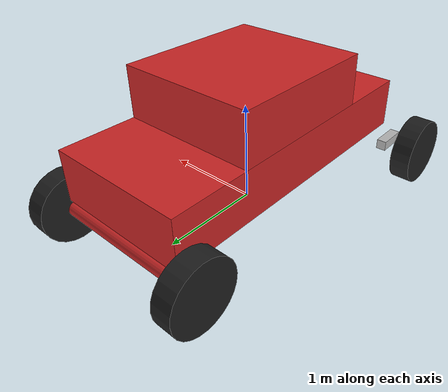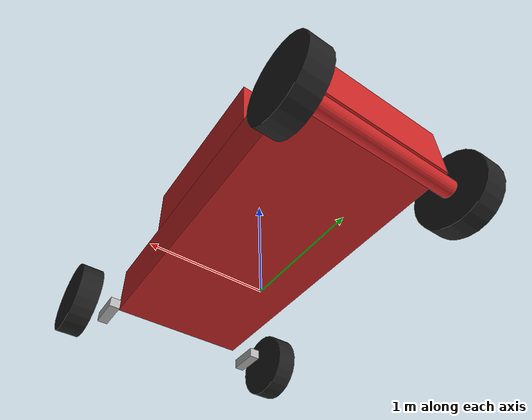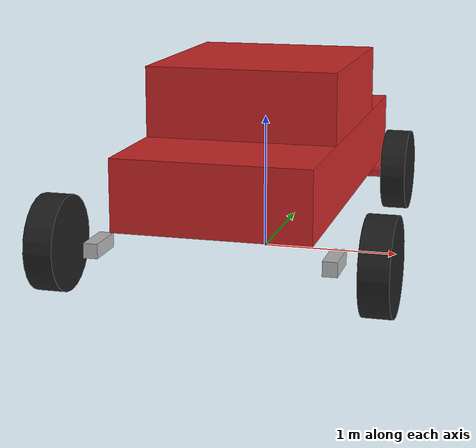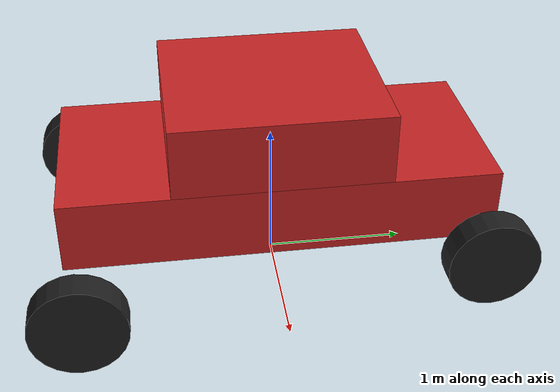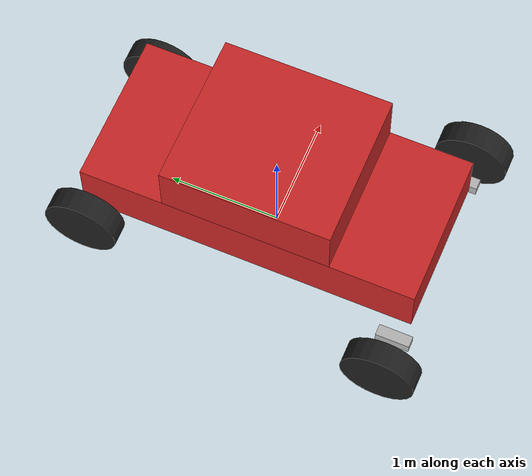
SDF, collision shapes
<?xml version="1.0" ?>
<sdf version='1.7'>
  <model name='steering_robot'>
    <link name='map'>
      <inertial>
        <pose>0 0.05241 0.011928 0 -0 0</pose>
        <mass>830</mass>
        <inertia>
          <ixx>687.053</ixx>
          <ixy>0</ixy>
          <ixz>0</ixz>
          <iyy>149.021</iyy>
          <iyz>-13.8361</iyz>
          <izz>783.643</izz>
        </inertia>
      </inertial>
      <collision name='map_fixed_joint_lump__ferrari_chassis_collision'>
        <pose>0 0 0.7 0 -0 0</pose>
        <geometry>
          <box>
            <size>1.357 3 0.5</size>
          </box>
        </geometry>
        <surface>
          <contact>
            <ode/>
          </contact>
          <friction>
            <ode/>
          </friction>
        </surface>
      </collision>
      <collision name='map_fixed_joint_lump__ferrari_chassis_collision_1'>
        <pose>0 0 1.2 0 -0 0</pose>
        <geometry>
          <box>
            <size>1.357 1.5 0.5</size>
          </box>
        </geometry>
        <surface>
          <contact>
            <ode/>
          </contact>
          <friction>
            <ode/>
          </friction>
        </surface>
      </collision>
      <collision name='map_fixed_joint_lump__rear_axle_collision_3'>
        <pose>0 1.45 0.33 0 1.5708 0</pose>
        <geometry>
          <cylinder>
            <length>1.6</length>
            <radius>0.075</radius>
          </cylinder>
        </geometry>
      </collision>
      <visual name='map_fixed_joint_lump__ferrari_chassis_visual'>
        <pose>0 0 0.7 0 -0 0</pose>
        <geometry>
          <box>
            <size>1.357 3 0.5</size>
          </box>
        </geometry>
        <material>
          <script>
            <name>Gazebo/Red</name>
            <uri>file://media/materials/scripts/gazebo.material</uri>
          </script>
        </material>
      </visual>
      <visual name='map_fixed_joint_lump__ferrari_chassis_visual_1'>
        <pose>0 0 1.2 0 -0 0</pose>
        <geometry>
          <box>
            <size>1.357 1 0.5</size>
          </box>
        </geometry>
        <material>
          <script>
            <name>Gazebo/Red</name>
            <uri>file://media/materials/scripts/gazebo.material</uri>
          </script>
        </material>
      </visual>
      <visual name='map_fixed_joint_lump__ferrari_chassis_visual_2'>
        <pose>0 0 0.7 0 -0 0</pose>
        <geometry>
          <box>
            <size>1.557 2 0.5</size>
          </box>
        </geometry>
        <material>
          <script>
            <name>Gazebo/Red</name>
            <uri>file://media/materials/scripts/gazebo.material</uri>
          </script>
        </material>
      </visual>
      <visual name='map_fixed_joint_lump__ferrari_chassis_visual_3'>
        <pose>0 0 0.7 0 -0 0</pose>
        <geometry>
          <box>
            <size>1.757 1.5 0.5</size>
          </box>
        </geometry>
        <material>
          <script>
            <name>Gazebo/Red</name>
            <uri>file://media/materials/scripts/gazebo.material</uri>
          </script>
        </material>
      </visual>
      <visual name='map_fixed_joint_lump__ferrari_chassis_visual_4'>
        <pose>0.5 1.4 1.05 0 -0 0</pose>
        <geometry>
          <box>
            <size>0.1 0.1 0.3</size>
          </box>
        </geometry>
        <material>
          <script>
            <name>Gazebo/Red</name>
            <uri>file://media/materials/scripts/gazebo.material</uri>
          </script>
        </material>
      </visual>
      <visual name='map_fixed_joint_lump__ferrari_chassis_visual_5'>
        <pose>-0.5 1.4 1.05 0 -0 0</pose>
        <geometry>
          <box>
            <size>0.1 0.1 0.3</size>
          </box>
        </geometry>
        <material>
          <script>
            <name>Gazebo/Red</name>
            <uri>file://media/materials/scripts/gazebo.material</uri>
          </script>
        </material>
      </visual>
      <visual name='map_fixed_joint_lump__ferrari_chassis_visual_6'>
        <pose>0 1.4 1.25 0 -0 0</pose>
        <geometry>
          <box>
            <size>1.357 0.2 0.1</size>
          </box>
        </geometry>
        <material>
          <script>
            <name>Gazebo/Red</name>
            <uri>file://media/materials/scripts/gazebo.material</uri>
          </script>
        </material>
      </visual>
      <visual name='map_fixed_joint_lump__ferrari_chassis_visual_7'>
        <pose>0 -1 1.05 0.6 -0 0</pose>
        <geometry>
          <box>
            <size>1.357 1.357 0.1</size>
          </box>
        </geometry>
        <material>
          <script>
            <name>Gazebo/Red</name>
            <uri>file://media/materials/scripts/gazebo.material</uri>
          </script>
        </material>
      </visual>
      <visual name='map_fixed_joint_lump__ferrari_chassis_visual_8'>
        <pose>0 0.75 1.05 -0.8 0 0</pose>
        <geometry>
          <box>
            <size>1.357 0.8785 0.1</size>
          </box>
        </geometry>
        <material>
          <script>
            <name>Gazebo/Red</name>
            <uri>file://media/materials/scripts/gazebo.material</uri>
          </script>
        </material>
      </visual>

      <visual name='map_fixed_joint_lump__rear_axle_visual_11'>
        <pose>0 1.45 0.33 0 1.5708 0</pose>
        <geometry>
          <cylinder>
            <length>1.6</length>
            <radius>0.075</radius>
          </cylinder>
        </geometry>
      </visual>
      <velocity_decay/>
      <velocity_decay/>

      <gravity>1</gravity>
      <velocity_decay/>
    </link>
    <joint name='front_left_steering_joint' type='fixed'>
      <pose relative_to='map'>0.8 -1.4 0.33 0 -0 0</pose>
      <parent>map</parent>
      <child>front_left_steering</child>
      <axis>
        <xyz>0 0 1</xyz>
        <limit>
          <lower>-0.6</lower>
          <upper>0.6</upper>
          <effort>10000</effort>
          <velocity>1000</velocity>
        </limit>
        <dynamics>
          <spring_reference>0</spring_reference>
          <spring_stiffness>0</spring_stiffness>
        </dynamics>
      </axis>
      <physics>
        <ode>
          <limit>
            <cfm>0</cfm>
            <erp>0.2</erp>
          </limit>
        </ode>
      </physics>
    </joint>
    <link name='front_left_steering'>
      <pose relative_to='front_left_steering_joint'>0 0 0 0 -0 0</pose>
      <inertial>
        <pose>0 0 0 0 -0 0</pose>
        <mass>50</mass>
        <inertia>
          <ixx>0.416667</ixx>
          <ixy>0</ixy>
          <ixz>0</ixz>
          <iyy>0.0833333</iyy>
          <iyz>0</iyz>
          <izz>0.416667</izz>
        </inertia>
      </inertial>
      <collision name='front_left_steering_collision'>
        <pose>0 0 0 0 -0 0</pose>
        <geometry>
          <box>
            <size>0.1 0.3 0.1</size>
          </box>
        </geometry>
      </collision>
      <visual name='front_left_steering_visual'>
        <pose>0 0 0 0 -0 0</pose>
        <geometry>
          <box>
            <size>0.1 0.3 0.1</size>
          </box>
        </geometry>
      </visual>
    </link>
    <joint name='front_right_steering_wheel_joint' type='fixed'>
      <pose relative_to='front_left_steering'>0.3 0 0 0 -0 0</pose>
      <parent>front_left_steering</parent>
      <child>front_right_steering_wheel</child>
      <axis>
        <xyz>1 0 0</xyz>
        <limit>
          <lower>-1e+16</lower>
          <upper>1e+16</upper>
        </limit>
        <dynamics>
          <damping>0.01</damping>
          <friction>0</friction>
          <spring_reference>0</spring_reference>
          <spring_stiffness>0</spring_stiffness>
        </dynamics>
      </axis>
      <physics>
        <ode>
          <limit>
            <cfm>0</cfm>
            <erp>0.2</erp>
          </limit>
        </ode>
      </physics>
    </joint>
    <link name='front_right_steering_wheel'>
      <pose relative_to='front_right_steering_wheel_joint'>0 0 0 0 -0 0</pose>
      <inertial>
        <pose>0 0 0 0 -0 0</pose>
        <mass>30</mass>
        <inertia>
          <ixx>0.91675</ixx>
          <ixy>0</ixy>
          <ixz>0</ixz>
          <iyy>0.91675</iyy>
          <iyz>0</iyz>
          <izz>1.6335</izz>
        </inertia>
      </inertial>
      <collision name='front_right_steering_wheel_collision'>
        <pose>0 0 0 0 1.5708 0</pose>
        <geometry>
          <cylinder>
            <length>0.2</length>
            <radius>0.33</radius>
          </cylinder>
        </geometry>
        <surface>
          <contact>
            <ode/>
          </contact>
          <friction>
            <ode/>
          </friction>
        </surface>
      </collision>
      <visual name='front_right_steering_wheel_visual'>
        <pose>0 0 0 0 -0 0</pose>
        <geometry>
          <mesh>
            <scale>0.01 0.01 0.01</scale>
            <uri>model://autopark/urdf/meshes/wheel.dae</uri>
          </mesh>
        </geometry>
        <material>
          <script>
            <name>Gazebo/Black</name>
            <uri>file://media/materials/scripts/gazebo.material</uri>
          </script>
        </material>
      </visual>
      <gravity>1</gravity>
      <velocity_decay/>
    </link>
    <joint name='front_right_steering_joint' type='fixed'>
      <pose relative_to='map'>-0.8 -1.4 0.33 0 -0 0</pose>
      <parent>map</parent>
      <child>front_right_steering</child>
      <axis>
        <xyz>0 0 1</xyz>
        <limit>
          <lower>-0.6</lower>
          <upper>0.6</upper>
          <effort>10000</effort>
          <velocity>1000</velocity>
        </limit>
        <dynamics>
          <spring_reference>0</spring_reference>
          <spring_stiffness>0</spring_stiffness>
        </dynamics>
      </axis>
      <physics>
        <ode>
          <limit>
            <cfm>0</cfm>
            <erp>0.2</erp>
          </limit>
        </ode>
      </physics>
    </joint>
    <link name='front_right_steering'>
      <pose relative_to='front_right_steering_joint'>0 0 0 0 -0 0</pose>
      <inertial>
        <pose>0 0 0 0 -0 0</pose>
        <mass>50</mass>
        <inertia>
          <ixx>0.416667</ixx>
          <ixy>0</ixy>
          <ixz>0</ixz>
          <iyy>0.0833333</iyy>
          <iyz>0</iyz>
          <izz>0.416667</izz>
        </inertia>
      </inertial>
      <collision name='front_right_steering_collision'>
        <pose>0 0 0 0 -0 0</pose>
        <geometry>
          <box>
            <size>0.1 0.3 0.1</size>
          </box>
        </geometry>
      </collision>
      <visual name='front_right_steering_visual'>
        <pose>0 0 0 0 -0 0</pose>
        <geometry>
          <box>
            <size>0.1 0.3 0.1</size>
          </box>
        </geometry>
      </visual>
    </link>
    <joint name='front_left_steering_wheel_joint' type='fixed'>
      <pose relative_to='front_right_steering'>-0.3 0 0 0 -0 0</pose>
      <parent>front_right_steering</parent>
      <child>front_left_steering_wheel</child>
      <axis>
        <xyz>1 0 0</xyz>
        <limit>
          <lower>-1e+16</lower>
          <upper>1e+16</upper>
        </limit>
        <dynamics>
          <damping>0.01</damping>
          <friction>0</friction>
          <spring_reference>0</spring_reference>
          <spring_stiffness>0</spring_stiffness>
        </dynamics>
      </axis>
      <physics>
        <ode>
          <limit>
            <cfm>0</cfm>
            <erp>0.2</erp>
          </limit>
        </ode>
      </physics>
    </joint>
    <link name='front_left_steering_wheel'>
      <pose relative_to='front_left_steering_wheel_joint'>0 0 0 0 -0 0</pose>
      <inertial>
        <pose>0 0 0 0 -0 0</pose>
        <mass>30</mass>
        <inertia>
          <ixx>0.91675</ixx>
          <ixy>0</ixy>
          <ixz>0</ixz>
          <iyy>0.91675</iyy>
          <iyz>0</iyz>
          <izz>1.6335</izz>
        </inertia>
      </inertial>
      <collision name='front_left_steering_wheel_collision'>
        <pose>0 0 0 0 1.5708 0</pose>
        <geometry>
          <cylinder>
            <length>0.2</length>
            <radius>0.33</radius>
          </cylinder>
        </geometry>
        <surface>
          <contact>
            <ode/>
          </contact>
          <friction>
            <ode/>
          </friction>
        </surface>
      </collision>
      <visual name='front_left_steering_wheel_visual'>
        <pose>0 0 0 0 -0 0</pose>
        <geometry>
          <mesh>
            <scale>0.01 0.01 0.01</scale>
            <uri>model://autopark/urdf/meshes/wheel.dae</uri>
          </mesh>
        </geometry>
        <material>
          <script>
            <name>Gazebo/Black</name>
            <uri>file://media/materials/scripts/gazebo.material</uri>
          </script>
        </material>
      </visual>
      <gravity>1</gravity>
      <velocity_decay/>
    </link>
    <joint name='rear_left_wheel_joint' type='fixed'>
      <pose relative_to='map'>0.8 1.45 0.33 0 -0 0</pose>
      <parent>map</parent>
      <child>rear_left_wheel</child>
      <axis>
        <xyz>1 0 0</xyz>
        <limit>
          <lower>-1e+16</lower>
          <upper>1e+16</upper>
        </limit>
        <dynamics>
          <damping>0.01</damping>
          <friction>0</friction>
          <spring_reference>0</spring_reference>
          <spring_stiffness>0</spring_stiffness>
        </dynamics>
      </axis>
      <physics>
        <ode>
          <limit>
            <cfm>0</cfm>
            <erp>0.2</erp>
          </limit>
        </ode>
      </physics>
    </joint>
    <link name='rear_left_wheel'>
      <pose relative_to='rear_left_wheel_joint'>0 0 0 0 -0 0</pose>
      <inertial>
        <pose>0 0 0 0 -0 0</pose>
        <mass>30</mass>
        <inertia>
          <ixx>0.91675</ixx>
          <ixy>0</ixy>
          <ixz>0</ixz>
          <iyy>0.91675</iyy>
          <iyz>0</iyz>
          <izz>1.6335</izz>
        </inertia>
      </inertial>
      <collision name='rear_left_wheel_collision'>
        <pose>0 0 0 0 1.5708 0</pose>
        <geometry>
          <cylinder>
            <length>0.2</length>
            <radius>0.33</radius>
          </cylinder>
        </geometry>
        <surface>
          <contact>
            <ode/>
          </contact>
          <friction>
            <ode/>
          </friction>
        </surface>
      </collision>
      <visual name='rear_left_wheel_visual'>
        <pose>0 0 0 0 -0 0</pose>
        <geometry>
          <mesh>
            <scale>0.01 0.01 0.01</scale>
            <uri>model://autopark/urdf/meshes/wheel.dae</uri>
          </mesh>
        </geometry>
        <material>
          <script>
            <name>Gazebo/Black</name>
            <uri>file://media/materials/scripts/gazebo.material</uri>
          </script>
        </material>
      </visual>
      <gravity>1</gravity>
      <velocity_decay/>
    </link>
    <joint name='rear_right_wheel_joint' type='fixed'>
      <pose relative_to='map'>-0.8 1.45 0.33 0 -0 0</pose>
      <parent>map</parent>
      <child>rear_right_wheel</child>
      <axis>
        <xyz>1 0 0</xyz>
        <limit>
          <lower>-1e+16</lower>
          <upper>1e+16</upper>
        </limit>
        <dynamics>
          <damping>0.01</damping>
          <friction>0</friction>
          <spring_reference>0</spring_reference>
          <spring_stiffness>0</spring_stiffness>
        </dynamics>
      </axis>
      <physics>
        <ode>
          <limit>
            <cfm>0</cfm>
            <erp>0.2</erp>
          </limit>
        </ode>
      </physics>
    </joint>
    <link name='rear_right_wheel'>
      <pose relative_to='rear_right_wheel_joint'>0 0 0 0 -0 0</pose>
      <inertial>
        <pose>0 0 0 0 -0 0</pose>
        <mass>30</mass>
        <inertia>
          <ixx>0.91675</ixx>
          <ixy>0</ixy>
          <ixz>0</ixz>
          <iyy>0.91675</iyy>
          <iyz>0</iyz>
          <izz>1.6335</izz>
        </inertia>
      </inertial>
      <collision name='rear_right_wheel_collision'>
        <pose>0 0 0 0 1.5708 0</pose>
        <geometry>
          <cylinder>
            <length>0.2</length>
            <radius>0.33</radius>
          </cylinder>
        </geometry>
        <surface>
          <contact>
            <ode/>
          </contact>
          <friction>
            <ode/>
          </friction>
        </surface>
      </collision>
      <visual name='rear_right_wheel_visual'>
        <pose>0 0 0 0 -0 0</pose>
        <geometry>
          <mesh>
            <scale>0.01 0.01 0.01</scale>
            <uri>model://autopark/urdf/meshes/wheel.dae</uri>
          </mesh>
        </geometry>
        <material>
          <script>
            <name>Gazebo/Black</name>
            <uri>file://media/materials/scripts/gazebo.material</uri>
          </script>
        </material>
      </visual>
      <gravity>1</gravity>
      <velocity_decay/>
    </link>
  </model>
</sdf>
